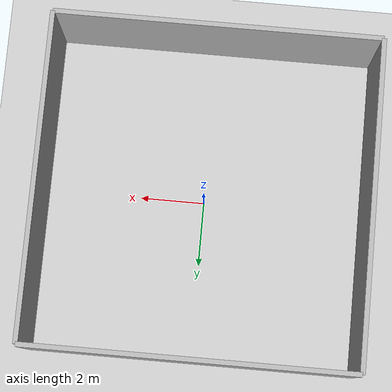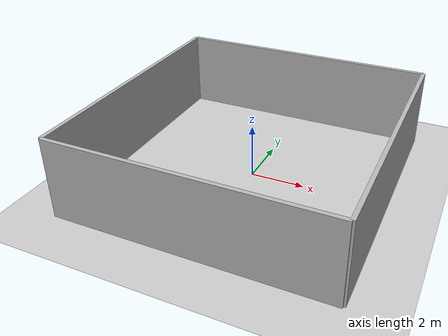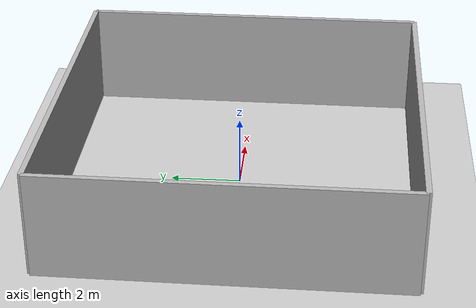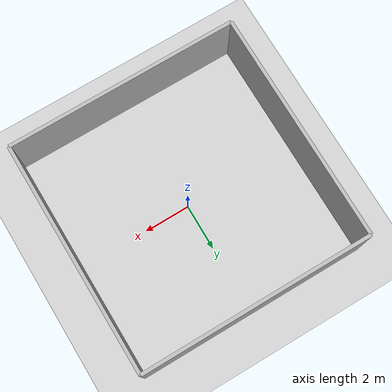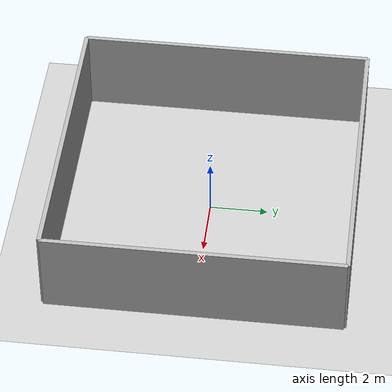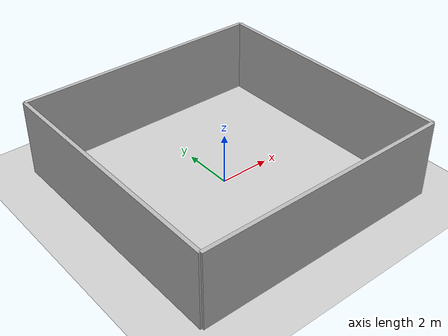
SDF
<sdf version="1.6">
 <world name="radar_fusion_test">
  <include><uri>model://sun</uri></include>
  <include><uri>model://ground_plane</uri></include>
  <model name="wall_n">
   <static>true</static>
   <link name="l">
    <collision name="c"><geometry><box><size>10 0.15 3</size></box></geometry></collision>
    <visual name="v"><geometry><box><size>10 0.15 3</size></box></geometry></visual>
   </link>
   <pose>0 5 1.5 0 0 0</pose>
  </model>
  <model name="wall_s">
   <static>true</static>
   <link name="l">
    <collision name="c"><geometry><box><size>10 0.15 3</size></box></geometry></collision>
    <visual name="v"><geometry><box><size>10 0.15 3</size></box></geometry></visual>
   </link>
   <pose>0 -5 1.5 0 0 0</pose>
  </model>
  <model name="wall_e">
   <static>true</static>
   <link name="l">
    <collision name="c"><geometry><box><size>0.15 10 3</size></box></geometry></collision>
    <visual name="v"><geometry><box><size>0.15 10 3</size></box></geometry></visual>
   </link>
   <pose>5 0 1.5 0 0 0</pose>
  </model>
  <model name="wall_w">
   <static>true</static>
   <link name="l">
    <collision name="c"><geometry><box><size>0.15 10 3</size></box></geometry></collision>
    <visual name="v"><geometry><box><size>0.15 10 3</size></box></geometry></visual>
   </link>
   <pose>-5 0 1.5 0 0 0</pose>
  </model>
 </world>
</sdf>
